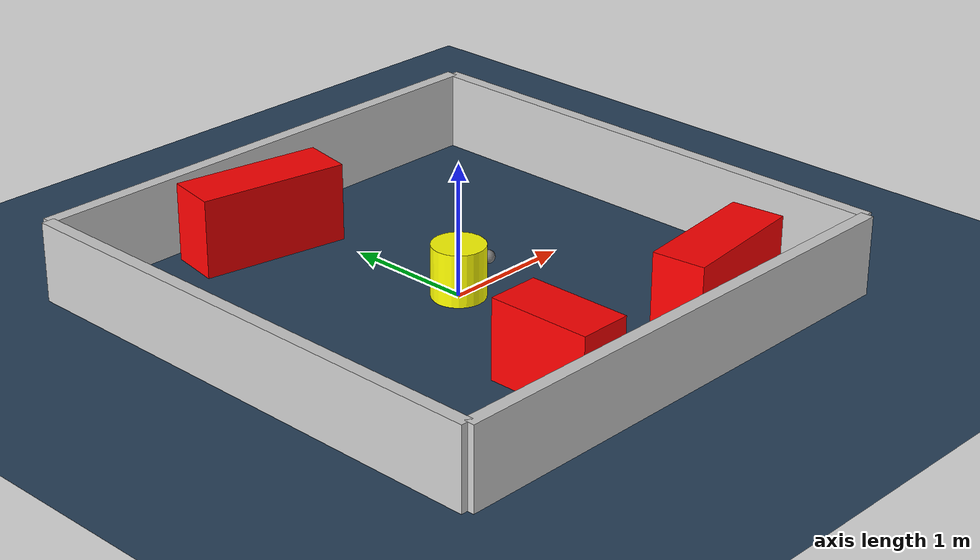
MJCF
<?xml version="1.0" ?>
<mujoco model="generated_environment">
  <option timestep="0.01" integrator="RK4" cone="elliptic"/>
  <default>
    <geom density="1"/>
  </default>
  <asset>
    <texture builtin="gradient" height="3072" rgb1="0.3 0.5 0.7" rgb2="0 0 0" type="skybox" width="512"/>
    <texture builtin="checker" height="300" mark="edge" markrgb="0.8 0.8 0.8" name="groundplane" rgb1="0.2 0.3 0.4" rgb2="0.1 0.2 0.3" type="2d" width="300"/>
    <material name="groundplane" reflectance="0.2" texrepeat="5 5" texture="groundplane" texuniform="true"/>
    <material name="robot" rgba="0.0 1.0 0.0 1"/>
  </asset>
  <worldbody>
    <light dir="0 0 -1" directional="true" pos="0 0 1.5"/>
    <geom condim="4" friction="1.0 0.005 0.001" material="groundplane" name="floor" size="0 0 0.05" type="plane"/>
    <body name="walls">
      <geom name="wall_1" condim="4" pos="-2.0 0.0 0.3" rgba="0.800000011920929 0.800000011920929 0.800000011920929 1.0" size="0.05 2.0 0.3" type="box"/>
      <geom name="wall_2" condim="4" pos="2.0 0.0 0.3" rgba="0.800000011920929 0.800000011920929 0.800000011920929 1.0" size="0.05 2.0 0.3" type="box"/>
      <geom name="wall_3" condim="4" pos="0.0 -2.0 0.3" rgba="0.800000011920929 0.800000011920929 0.800000011920929 1.0" size="2.0 0.05 0.3" type="box"/>
      <geom name="wall_4" condim="4" pos="0.0 2.0 0.3" rgba="0.800000011920929 0.800000011920929 0.800000011920929 1.0" size="2.0 0.05 0.3" type="box"/>
    </body>
    <body name="robot">
      <joint name="joint_x" type="slide" pos="0 0 0" axis="1 0 0"/>
      <joint name="joint_y" type="slide" pos="0 0 0" axis="0 1 0"/>
      <geom name="robot" type="sphere" pos="0.3 0.0 0.2" size="0.05" mass="5." friction="1.0 0.005 0.0001" condim="4" rgba="0.5 0.5 0.5 1.0"/>
      <site name="sensor_ball"/>
    </body>
    <body name="obstacle_movable_1">
      <geom name="obstacle_movable_1" condim="4" pos="0.0 0.0 0.2" euler="0 0 0.0" friction="1.0 0.005 0.001" rgba="1.0 1.0 0.0 1.0" size="0.2 0.2 0.0" type="cylinder" mass="0.1"/>
      <joint type="free"/>
    </body>
    <body name="obstacle_2_static">
      <geom name="obstacle_2_static" condim="4" pos="-0.5422372421289599 -1.4011604586583808 0.3" euler="0 0 270.2321483533226" friction="1.0 0.005 0.001" rgba="1 0 0 1" size="0.393331465836121 0.2 0.3" type="box"/>
    </body>
    <body name="obstacle_3_static">
      <geom name="obstacle_3_static" condim="4" pos="-0.44467501591596115 1.5637125398929415 0.3" euler="0 0 349.8084164476133" friction="1.0 0.005 0.001" rgba="1 0 0 1" size="0.575751143772786 0.2 0.3" type="box"/>
    </body>
    <body name="obstacle_4_static">
      <geom name="obstacle_4_static" condim="4" pos="1.0362471774873085 -1.4573007399713482 0.3" euler="0 0 186.58783740728245" friction="1.0 0.005 0.001" rgba="1 0 0 1" size="0.5191156167320232 0.2 0.3" type="box"/>
    </body>
  </worldbody>
  <actuator>
    <motor name="actuator_x" joint="joint_x" gear="1" ctrlrange="-1 1"/>
    <motor name="actuator_y" joint="joint_y" gear="1" ctrlrange="-1 1"/>
  </actuator>
</mujoco>
